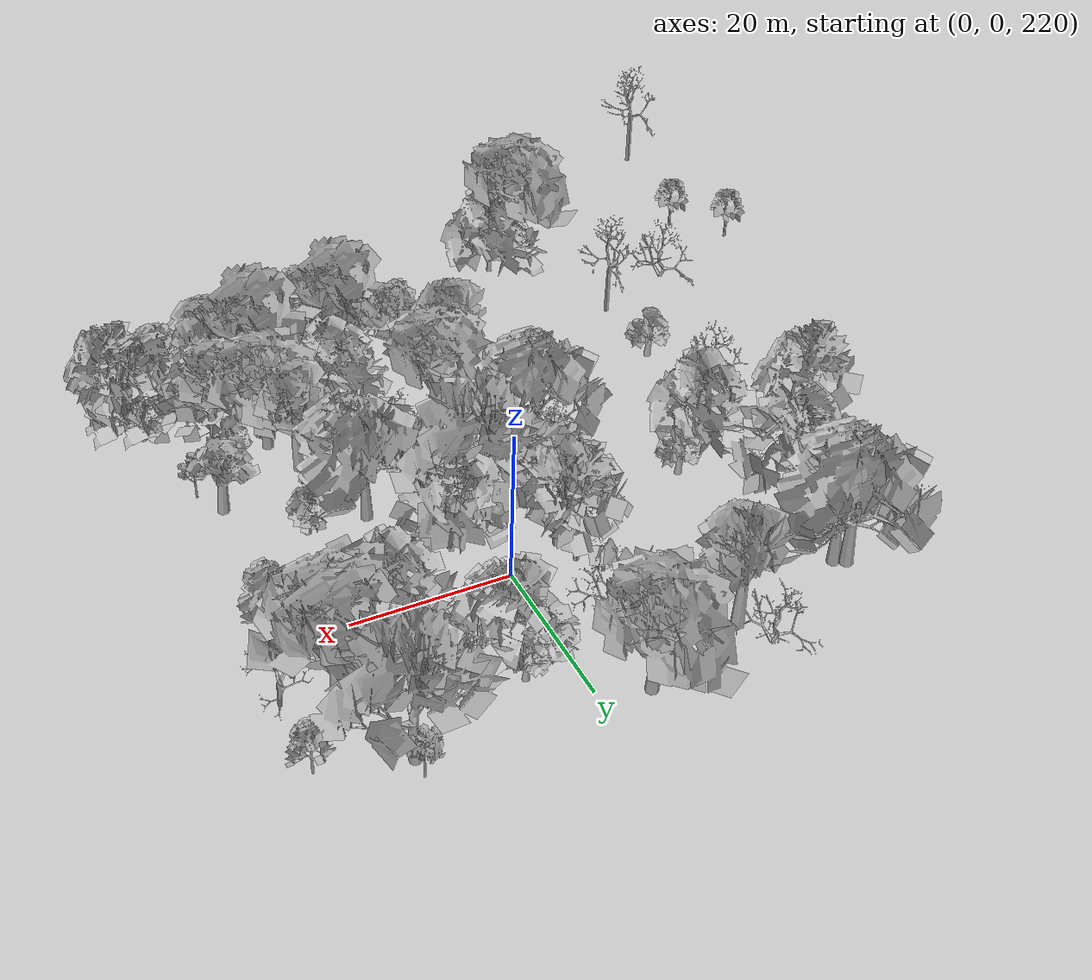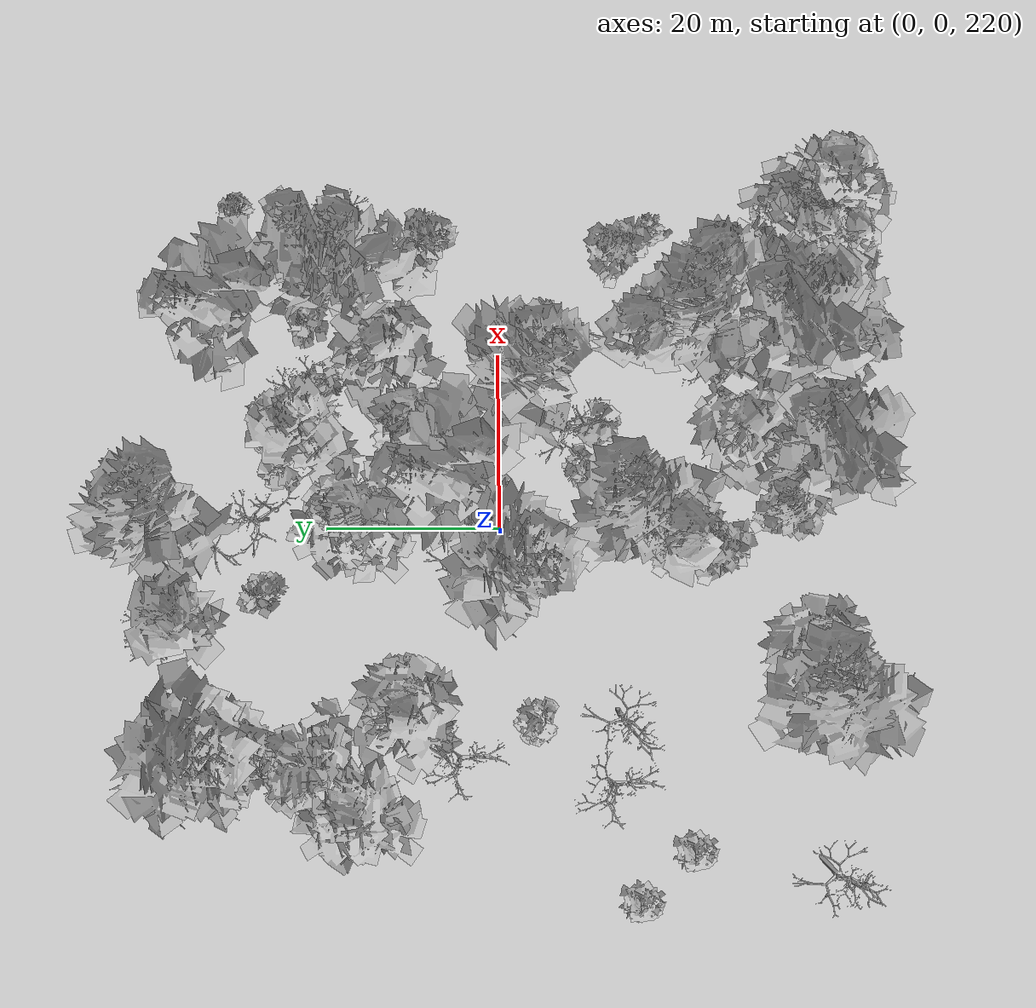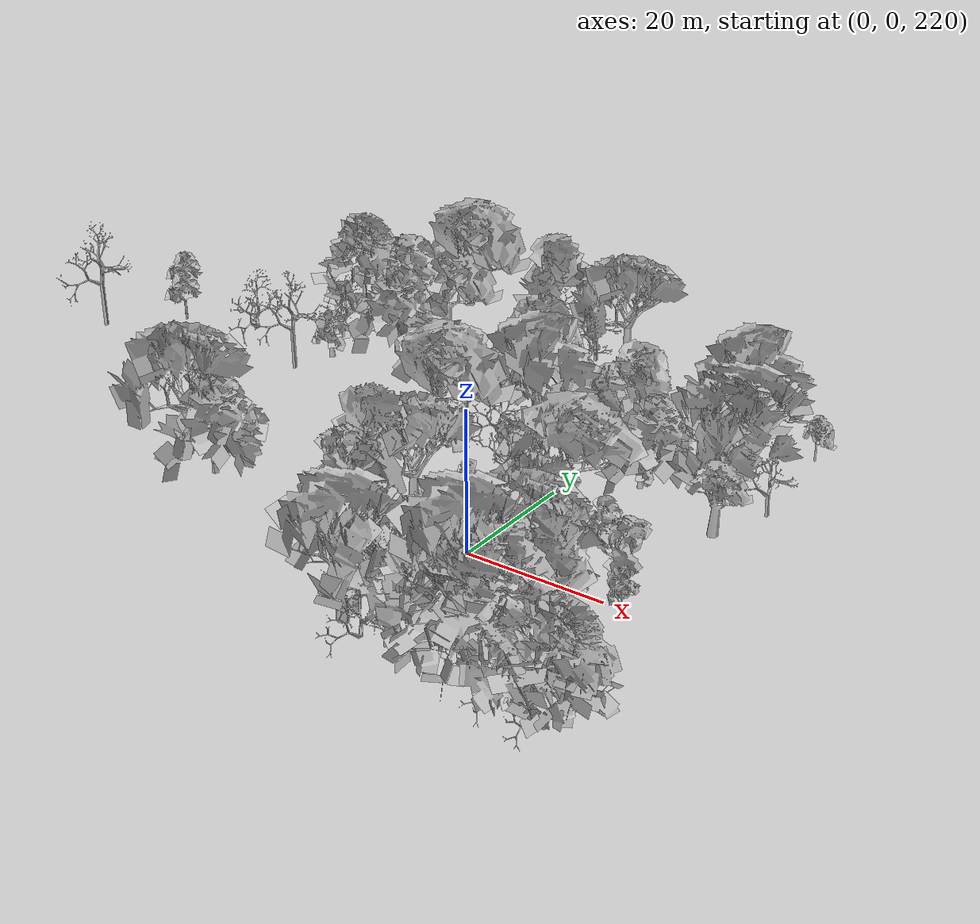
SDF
<sdf version="1.6">
 <world name="default">
  <light name="sun" type="directional">
   <pose>0 0 10 0 -0 0</pose>
   <diffuse>0.8 0.8 0.8 1</diffuse>
   <specular>0.2 0.2 0.2 1</specular>
   <attenuation>
    <range>1000</range>
    <constant>0.9</constant>
    <linear>0.01</linear>
    <quadratic>0.001</quadratic>
   </attenuation>
   <direction>-0.5 0.1 -0.9</direction>
  </light>
  <scene>
   <sky><clouds><speed>12</speed></clouds></sky>
   <ambient>0.4 0.4 0.4 1</ambient>
   <background>0.7 0.7 0.7 1</background>
   <shadows>1</shadows>
  </scene>
  <spherical_coordinates>
   <surface_model>EARTH_WGS84</surface_model>
   <latitude_deg>47.3977</latitude_deg>
   <longitude_deg>8.54559</longitude_deg>
   <elevation>0</elevation>
   <heading_deg>0</heading_deg>
  </spherical_coordinates>
  <physics name="default_physics" default="0" type="ode">
   <ode>
    <solver>
     <type>quick</type>
     <iters>100</iters>
     <sor>1.3</sor>
     <use_dynamic_moi_rescaling>0</use_dynamic_moi_rescaling>
    </solver>
    <constraints>
     <cfm>0</cfm>
     <erp>0.2</erp>
     <contact_max_correcting_vel>100</contact_max_correcting_vel>
     <contact_surface_layer>0.001</contact_surface_layer>
    </constraints>
   </ode>
   <max_step_size>0.002</max_step_size>
   <real_time_factor>1</real_time_factor>
   <real_time_update_rate>500</real_time_update_rate>
  </physics>
  <gravity>0 0 -9.8</gravity>
  <magnetic_field>6e-06 2.3e-05 -4.2e-05</magnetic_field>
  <atmosphere type="adiabatic"/>
  <model name="my_mesh0">
   <pose>31.1524 -31.311 230.497 0 0 -1.45035</pose>
   <static>1</static>
   <link name="body">
    <visual name="visual">
     <geometry><mesh><uri>model://trees/12.dae</uri><scale>1 1 1</scale></mesh></geometry>
    </visual>
    <collision name="collision">
     <geometry><mesh><uri>model://trees/12.dae</uri><scale>1 1 1</scale></mesh></geometry>
    </collision>
   </link>
  </model>
  <model name="my_mesh1">
   <pose>29.3888 -31.8698 229.95 0 -0 0.106092</pose>
   <static>1</static>
   <link name="body">
    <visual name="visual">
     <geometry><mesh><uri>model://trees/4.dae</uri><scale>1 1 1</scale></mesh></geometry>
    </visual>
    <collision name="collision">
     <geometry><mesh><uri>model://trees/4.dae</uri><scale>1 1 1</scale></mesh></geometry>
    </collision>
   </link>
  </model>
  <model name="my_mesh2">
   <pose>15.3385 -22.8535 231.509 0 0 -1.45062</pose>
   <static>1</static>
   <link name="body">
    <visual name="visual">
     <geometry><mesh><uri>model://trees/17.dae</uri><scale>1 1 1</scale></mesh></geometry>
    </visual>
    <collision name="collision">
     <geometry><mesh><uri>model://trees/17.dae</uri><scale>1 1 1</scale></mesh></geometry>
    </collision>
   </link>
  </model>
  <model name="my_mesh3">
   <pose>24.655 -35.0737 231.24 0 -0 1.0897</pose>
   <static>1</static>
   <link name="body">
    <visual name="visual">
     <geometry><mesh><uri>model://trees/4.dae</uri><scale>1 1 1</scale></mesh></geometry>
    </visual>
    <collision name="collision">
     <geometry><mesh><uri>model://trees/4.dae</uri><scale>1 1 1</scale></mesh></geometry>
    </collision>
   </link>
  </model>
  <model name="my_mesh4">
   <pose>20.6946 -32.0705 231.665 0 -0 0.135253</pose>
   <static>1</static>
   <link name="body">
    <visual name="visual">
     <geometry><mesh><uri>model://trees/12.dae</uri><scale>1 1 1</scale></mesh></geometry>
    </visual>
    <collision name="collision">
     <geometry><mesh><uri>model://trees/12.dae</uri><scale>1 1 1</scale></mesh></geometry>
    </collision>
   </link>
  </model>
  <model name="my_mesh5">
   <pose>-13.8171 -29.8009 242.963 0 -0 0.102727</pose>
   <static>1</static>
   <link name="body">
    <visual name="visual">
     <geometry><mesh><uri>model://trees/0.dae</uri><scale>1 1 1</scale></mesh></geometry>
    </visual>
    <collision name="collision">
     <geometry><mesh><uri>model://trees/0.dae</uri><scale>1 1 1</scale></mesh></geometry>
    </collision>
   </link>
  </model>
  <model name="my_mesh6">
   <pose>31.3843 -30.0536 230.694 0 -0 0.717712</pose>
   <static>1</static>
   <link name="body">
    <visual name="visual">
     <geometry><mesh><uri>model://trees/18.dae</uri><scale>1 1 1</scale></mesh></geometry>
    </visual>
    <collision name="collision">
     <geometry><mesh><uri>model://trees/18.dae</uri><scale>1 1 1</scale></mesh></geometry>
    </collision>
   </link>
  </model>
  <model name="my_mesh7">
   <pose>30.1693 -34.8302 229.556 0 0 -0.960218</pose>
   <static>1</static>
   <link name="body">
    <visual name="visual">
     <geometry><mesh><uri>model://trees/12.dae</uri><scale>1 1 1</scale></mesh></geometry>
    </visual>
    <collision name="collision">
     <geometry><mesh><uri>model://trees/12.dae</uri><scale>1 1 1</scale></mesh></geometry>
    </collision>
   </link>
  </model>
  <model name="my_mesh8">
   <pose>11.8877 -35.4621 230.894 0 0 -0.17105</pose>
   <static>1</static>
   <link name="body">
    <visual name="visual">
     <geometry><mesh><uri>model://trees/19.dae</uri><scale>1 1 1</scale></mesh></geometry>
    </visual>
    <collision name="collision">
     <geometry><mesh><uri>model://trees/19.dae</uri><scale>1 1 1</scale></mesh></geometry>
    </collision>
   </link>
  </model>
  <model name="my_mesh9">
   <pose>15.0563 -35.501 230.777 0 0 -0.872889</pose>
   <static>1</static>
   <link name="body">
    <visual name="visual">
     <geometry><mesh><uri>model://trees/3.dae</uri><scale>1 1 1</scale></mesh></geometry>
    </visual>
    <collision name="collision">
     <geometry><mesh><uri>model://trees/3.dae</uri><scale>1 1 1</scale></mesh></geometry>
    </collision>
   </link>
  </model>
  <model name="my_mesh10">
   <pose>20.3571 -29.6023 232.07 0 -0 0.651751</pose>
   <static>1</static>
   <link name="body">
    <visual name="visual">
     <geometry><mesh><uri>model://trees/10.dae</uri><scale>1 1 1</scale></mesh></geometry>
    </visual>
    <collision name="collision">
     <geometry><mesh><uri>model://trees/10.dae</uri><scale>1 1 1</scale></mesh></geometry>
    </collision>
   </link>
  </model>
  <model name="my_mesh11">
   <pose>34.1397 -33.8044 229.607 0 0 -1.47912</pose>
   <static>1</static>
   <link name="body">
    <visual name="visual">
     <geometry><mesh><uri>model://trees/12.dae</uri><scale>1 1 1</scale></mesh></geometry>
    </visual>
    <collision name="collision">
     <geometry><mesh><uri>model://trees/12.dae</uri><scale>1 1 1</scale></mesh></geometry>
    </collision>
   </link>
  </model>
  <model name="my_mesh12">
   <pose>35.7313 -34.6713 229.02 0 0 -0.261683</pose>
   <static>1</static>
   <link name="body">
    <visual name="visual">
     <geometry><mesh><uri>model://trees/15.dae</uri><scale>1 1 1</scale></mesh></geometry>
    </visual>
    <collision name="collision">
     <geometry><mesh><uri>model://trees/15.dae</uri><scale>1 1 1</scale></mesh></geometry>
    </collision>
   </link>
  </model>
  <model name="my_mesh13">
   <pose>29.662 -12.3445 230.518 0 -0 1.25036</pose>
   <static>1</static>
   <link name="body">
    <visual name="visual">
     <geometry><mesh><uri>model://trees/7.dae</uri><scale>1 1 1</scale></mesh></geometry>
    </visual>
    <collision name="collision">
     <geometry><mesh><uri>model://trees/7.dae</uri><scale>1 1 1</scale></mesh></geometry>
    </collision>
   </link>
  </model>
  <model name="my_mesh14">
   <pose>8.32629 -34.2031 230.635 0 0 -1.23552</pose>
   <static>1</static>
   <link name="body">
    <visual name="visual">
     <geometry><mesh><uri>model://trees/2.dae</uri><scale>1 1 1</scale></mesh></geometry>
    </visual>
    <collision name="collision">
     <geometry><mesh><uri>model://trees/2.dae</uri><scale>1 1 1</scale></mesh></geometry>
    </collision>
   </link>
  </model>
  <model name="my_mesh15">
   <pose>25.5189 -28.6891 230.988 0 0 -1.3408</pose>
   <static>1</static>
   <link name="body">
    <visual name="visual">
     <geometry><mesh><uri>model://trees/11.dae</uri><scale>1 1 1</scale></mesh></geometry>
    </visual>
    <collision name="collision">
     <geometry><mesh><uri>model://trees/11.dae</uri><scale>1 1 1</scale></mesh></geometry>
    </collision>
   </link>
  </model>
  <model name="my_mesh16">
   <pose>34.3119 -29.0773 230.346 0 0 -0.647521</pose>
   <static>1</static>
   <link name="body">
    <visual name="visual">
     <geometry><mesh><uri>model://trees/0.dae</uri><scale>1 1 1</scale></mesh></geometry>
    </visual>
    <collision name="collision">
     <geometry><mesh><uri>model://trees/0.dae</uri><scale>1 1 1</scale></mesh></geometry>
    </collision>
   </link>
  </model>
  <model name="my_mesh17">
   <pose>34.753 -31.8619 230.264 0 -0 1.55208</pose>
   <static>1</static>
   <link name="body">
    <visual name="visual">
     <geometry><mesh><uri>model://trees/3.dae</uri><scale>1 1 1</scale></mesh></geometry>
    </visual>
    <collision name="collision">
     <geometry><mesh><uri>model://trees/3.dae</uri><scale>1 1 1</scale></mesh></geometry>
    </collision>
   </link>
  </model>
  <model name="my_mesh18">
   <pose>25.0224 -32.5216 230.934 0 -0 1.19606</pose>
   <static>1</static>
   <link name="body">
    <visual name="visual">
     <geometry><mesh><uri>model://trees/11.dae</uri><scale>1 1 1</scale></mesh></geometry>
    </visual>
    <collision name="collision">
     <geometry><mesh><uri>model://trees/11.dae</uri><scale>1 1 1</scale></mesh></geometry>
    </collision>
   </link>
  </model>
  <model name="my_mesh19">
   <pose>7.82168 -31.7989 230.685 0 0 -0.762292</pose>
   <static>1</static>
   <link name="body">
    <visual name="visual">
     <geometry><mesh><uri>model://trees/8.dae</uri><scale>1 1 1</scale></mesh></geometry>
    </visual>
    <collision name="collision">
     <geometry><mesh><uri>model://trees/8.dae</uri><scale>1 1 1</scale></mesh></geometry>
    </collision>
   </link>
  </model>
  <model name="my_mesh20">
   <pose>21.6446 -22.6913 231.066 0 -0 0.324053</pose>
   <static>1</static>
   <link name="body">
    <visual name="visual">
     <geometry><mesh><uri>model://trees/16.dae</uri><scale>1 1 1</scale></mesh></geometry>
    </visual>
    <collision name="collision">
     <geometry><mesh><uri>model://trees/16.dae</uri><scale>1 1 1</scale></mesh></geometry>
    </collision>
   </link>
  </model>
  <model name="my_mesh21">
   <pose>11.071 -26.0863 231.149 0 -0 1.03473</pose>
   <static>1</static>
   <link name="body">
    <visual name="visual">
     <geometry><mesh><uri>model://trees/12.dae</uri><scale>1 1 1</scale></mesh></geometry>
    </visual>
    <collision name="collision">
     <geometry><mesh><uri>model://trees/12.dae</uri><scale>1 1 1</scale></mesh></geometry>
    </collision>
   </link>
  </model>
  <model name="my_mesh22">
   <pose>31.7509 -32.9906 230.148 0 0 -0.412476</pose>
   <static>1</static>
   <link name="body">
    <visual name="visual">
     <geometry><mesh><uri>model://trees/16.dae</uri><scale>1 1 1</scale></mesh></geometry>
    </visual>
    <collision name="collision">
     <geometry><mesh><uri>model://trees/16.dae</uri><scale>1 1 1</scale></mesh></geometry>
    </collision>
   </link>
  </model>
  <model name="my_mesh23">
   <pose>35.0457 -35.7814 229.169 0 0 -0.416861</pose>
   <static>1</static>
   <link name="body">
    <visual name="visual">
     <geometry><mesh><uri>model://trees/18.dae</uri><scale>1 1 1</scale></mesh></geometry>
    </visual>
    <collision name="collision">
     <geometry><mesh><uri>model://trees/18.dae</uri><scale>1 1 1</scale></mesh></geometry>
    </collision>
   </link>
  </model>
  <model name="my_mesh24">
   <pose>22.8717 -26.872 231.231 0 -0 0.503074</pose>
   <static>1</static>
   <link name="body">
    <visual name="visual">
     <geometry><mesh><uri>model://trees/18.dae</uri><scale>1 1 1</scale></mesh></geometry>
    </visual>
    <collision name="collision">
     <geometry><mesh><uri>model://trees/18.dae</uri><scale>1 1 1</scale></mesh></geometry>
    </collision>
   </link>
  </model>
  <model name="my_mesh25">
   <pose>16.8344 -33.4902 231.24 0 -0 1.45373</pose>
   <static>1</static>
   <link name="body">
    <visual name="visual">
     <geometry><mesh><uri>model://trees/5.dae</uri><scale>1 1 1</scale></mesh></geometry>
    </visual>
    <collision name="collision">
     <geometry><mesh><uri>model://trees/5.dae</uri><scale>1 1 1</scale></mesh></geometry>
    </collision>
   </link>
  </model>
  <model name="my_mesh26">
   <pose>25.4615 -33.8037 231.056 0 0 -0.284235</pose>
   <static>1</static>
   <link name="body">
    <visual name="visual">
     <geometry><mesh><uri>model://trees/2.dae</uri><scale>1 1 1</scale></mesh></geometry>
    </visual>
    <collision name="collision">
     <geometry><mesh><uri>model://trees/2.dae</uri><scale>1 1 1</scale></mesh></geometry>
    </collision>
   </link>
  </model>
  <model name="my_mesh27">
   <pose>33.8104 -33.6316 229.918 0 -0 0.342298</pose>
   <static>1</static>
   <link name="body">
    <visual name="visual">
     <geometry><mesh><uri>model://trees/13.dae</uri><scale>1 1 1</scale></mesh></geometry>
    </visual>
    <collision name="collision">
     <geometry><mesh><uri>model://trees/13.dae</uri><scale>1 1 1</scale></mesh></geometry>
    </collision>
   </link>
  </model>
  <model name="my_mesh28">
   <pose>8.11139 -33.9276 230.679 0 -0 0.625491</pose>
   <static>1</static>
   <link name="body">
    <visual name="visual">
     <geometry><mesh><uri>model://trees/10.dae</uri><scale>1 1 1</scale></mesh></geometry>
    </visual>
    <collision name="collision">
     <geometry><mesh><uri>model://trees/10.dae</uri><scale>1 1 1</scale></mesh></geometry>
    </collision>
   </link>
  </model>
  <model name="my_mesh29">
   <pose>19.4259 -35.2116 231.509 0 -0 0.205237</pose>
   <static>1</static>
   <link name="body">
    <visual name="visual">
     <geometry><mesh><uri>model://trees/13.dae</uri><scale>1 1 1</scale></mesh></geometry>
    </visual>
    <collision name="collision">
     <geometry><mesh><uri>model://trees/13.dae</uri><scale>1 1 1</scale></mesh></geometry>
    </collision>
   </link>
  </model>
  <model name="my_mesh30">
   <pose>18.3582 -32.2394 231.561 0 -0 0.185167</pose>
   <static>1</static>
   <link name="body">
    <visual name="visual">
     <geometry><mesh><uri>model://trees/7.dae</uri><scale>1 1 1</scale></mesh></geometry>
    </visual>
    <collision name="collision">
     <geometry><mesh><uri>model://trees/7.dae</uri><scale>1 1 1</scale></mesh></geometry>
    </collision>
   </link>
  </model>
  <model name="my_mesh31">
   <pose>13.8049 -32.8782 231.037 0 -0 0.808948</pose>
   <static>1</static>
   <link name="body">
    <visual name="visual">
     <geometry><mesh><uri>model://trees/13.dae</uri><scale>1 1 1</scale></mesh></geometry>
    </visual>
    <collision name="collision">
     <geometry><mesh><uri>model://trees/13.dae</uri><scale>1 1 1</scale></mesh></geometry>
    </collision>
   </link>
  </model>
  <model name="my_mesh32">
   <pose>2.14139 -29.3968 234.385 0 -0 0.318482</pose>
   <static>1</static>
   <link name="body">
    <visual name="visual">
     <geometry><mesh><uri>model://trees/7.dae</uri><scale>1 1 1</scale></mesh></geometry>
    </visual>
    <collision name="collision">
     <geometry><mesh><uri>model://trees/7.dae</uri><scale>1 1 1</scale></mesh></geometry>
    </collision>
   </link>
  </model>
  <model name="my_mesh33">
   <pose>1.45094 24.8651 231.984 0 -0 0.811719</pose>
   <static>1</static>
   <link name="body">
    <visual name="visual">
     <geometry><mesh><uri>model://trees/16.dae</uri><scale>1 1 1</scale></mesh></geometry>
    </visual>
    <collision name="collision">
     <geometry><mesh><uri>model://trees/16.dae</uri><scale>1 1 1</scale></mesh></geometry>
    </collision>
   </link>
  </model>
  <model name="my_mesh34">
   <pose>22.5375 -4.4797 230.974 0 0 -1.01621</pose>
   <static>1</static>
   <link name="body">
    <visual name="visual">
     <geometry><mesh><uri>model://trees/0.dae</uri><scale>1 1 1</scale></mesh></geometry>
    </visual>
    <collision name="collision">
     <geometry><mesh><uri>model://trees/0.dae</uri><scale>1 1 1</scale></mesh></geometry>
    </collision>
   </link>
  </model>
  <model name="my_mesh35">
   <pose>-1.21129 -21.8494 236.618 0 -0 1.04905</pose>
   <static>1</static>
   <link name="body">
    <visual name="visual">
     <geometry><mesh><uri>model://trees/7.dae</uri><scale>1 1 1</scale></mesh></geometry>
    </visual>
    <collision name="collision">
     <geometry><mesh><uri>model://trees/7.dae</uri><scale>1 1 1</scale></mesh></geometry>
    </collision>
   </link>
  </model>
  <model name="my_mesh36">
   <pose>15.5492 20.7111 230.208 0 0 -0.635082</pose>
   <static>1</static>
   <link name="body">
    <visual name="visual">
     <geometry><mesh><uri>model://trees/18.dae</uri><scale>1 1 1</scale></mesh></geometry>
    </visual>
    <collision name="collision">
     <geometry><mesh><uri>model://trees/18.dae</uri><scale>1 1 1</scale></mesh></geometry>
    </collision>
   </link>
  </model>
  <model name="my_mesh37">
   <pose>23.8178 28.2306 229.45 0 -0 1.53763</pose>
   <static>1</static>
   <link name="body">
    <visual name="visual">
     <geometry><mesh><uri>model://trees/10.dae</uri><scale>1 1 1</scale></mesh></geometry>
    </visual>
    <collision name="collision">
     <geometry><mesh><uri>model://trees/10.dae</uri><scale>1 1 1</scale></mesh></geometry>
    </collision>
   </link>
  </model>
  <model name="my_mesh38">
   <pose>11.5917 20.6222 231.431 0 0 -0.04736</pose>
   <static>1</static>
   <link name="body">
    <visual name="visual">
     <geometry><mesh><uri>model://trees/4.dae</uri><scale>1 1 1</scale></mesh></geometry>
    </visual>
    <collision name="collision">
     <geometry><mesh><uri>model://trees/4.dae</uri><scale>1 1 1</scale></mesh></geometry>
    </collision>
   </link>
  </model>
  <model name="my_mesh39">
   <pose>-0.13213 30.0152 235.826 0 0 -0.648301</pose>
   <static>1</static>
   <link name="body">
    <visual name="visual">
     <geometry><mesh><uri>model://trees/17.dae</uri><scale>1 1 1</scale></mesh></geometry>
    </visual>
    <collision name="collision">
     <geometry><mesh><uri>model://trees/17.dae</uri><scale>1 1 1</scale></mesh></geometry>
    </collision>
   </link>
  </model>
  <model name="my_mesh40">
   <pose>26.3459 -18.9374 231.747 0 -0 1.35426</pose>
   <static>1</static>
   <link name="body">
    <visual name="visual">
     <geometry><mesh><uri>model://trees/0.dae</uri><scale>1 1 1</scale></mesh></geometry>
    </visual>
    <collision name="collision">
     <geometry><mesh><uri>model://trees/0.dae</uri><scale>1 1 1</scale></mesh></geometry>
    </collision>
   </link>
  </model>
  <model name="my_mesh41">
   <pose>26.5411 15.8974 228.092 0 -0 0.029757</pose>
   <static>1</static>
   <link name="body">
    <visual name="visual">
     <geometry><mesh><uri>model://trees/10.dae</uri><scale>1 1 1</scale></mesh></geometry>
    </visual>
    <collision name="collision">
     <geometry><mesh><uri>model://trees/10.dae</uri><scale>1 1 1</scale></mesh></geometry>
    </collision>
   </link>
  </model>
  <model name="my_mesh42">
   <pose>30.1245 7.34383 229.103 0 0 -1.22853</pose>
   <static>1</static>
   <link name="body">
    <visual name="visual">
     <geometry><mesh><uri>model://trees/7.dae</uri><scale>1 1 1</scale></mesh></geometry>
    </visual>
    <collision name="collision">
     <geometry><mesh><uri>model://trees/7.dae</uri><scale>1 1 1</scale></mesh></geometry>
    </collision>
   </link>
  </model>
  <model name="my_mesh43">
   <pose>6.92032 23.0483 230.588 0 0 -0.795025</pose>
   <static>1</static>
   <link name="body">
    <visual name="visual">
     <geometry><mesh><uri>model://trees/5.dae</uri><scale>1 1 1</scale></mesh></geometry>
    </visual>
    <collision name="collision">
     <geometry><mesh><uri>model://trees/5.dae</uri><scale>1 1 1</scale></mesh></geometry>
    </collision>
   </link>
  </model>
  <model name="my_mesh44">
   <pose>21.6905 -20.5474 231.33 0 -0 0.204067</pose>
   <static>1</static>
   <link name="body">
    <visual name="visual">
     <geometry><mesh><uri>model://trees/9.dae</uri><scale>1 1 1</scale></mesh></geometry>
    </visual>
    <collision name="collision">
     <geometry><mesh><uri>model://trees/9.dae</uri><scale>1 1 1</scale></mesh></geometry>
    </collision>
   </link>
  </model>
  <model name="my_mesh45">
   <pose>-3.1877 -1.05893 235.667 0 0 -1.4459</pose>
   <static>1</static>
   <link name="body">
    <visual name="visual">
     <geometry><mesh><uri>model://trees/9.dae</uri><scale>1 1 1</scale></mesh></geometry>
    </visual>
    <collision name="collision">
     <geometry><mesh><uri>model://trees/9.dae</uri><scale>1 1 1</scale></mesh></geometry>
    </collision>
   </link>
  </model>
  <model name="my_mesh46">
   <pose>19.883 -14.7815 231.582 0 -0 0.22335</pose>
   <static>1</static>
   <link name="body">
    <visual name="visual">
     <geometry><mesh><uri>model://trees/11.dae</uri><scale>1 1 1</scale></mesh></geometry>
    </visual>
    <collision name="collision">
     <geometry><mesh><uri>model://trees/11.dae</uri><scale>1 1 1</scale></mesh></geometry>
    </collision>
   </link>
  </model>
  <model name="my_mesh47">
   <pose>10.537 24.3267 230.641 0 -0 0.197839</pose>
   <static>1</static>
   <link name="body">
    <visual name="visual">
     <geometry><mesh><uri>model://trees/0.dae</uri><scale>1 1 1</scale></mesh></geometry>
    </visual>
    <collision name="collision">
     <geometry><mesh><uri>model://trees/0.dae</uri><scale>1 1 1</scale></mesh></geometry>
    </collision>
   </link>
  </model>
  <model name="my_mesh48">
   <pose>6.74933 0.761423 234.636 0 0 -1.11255</pose>
   <static>1</static>
   <link name="body">
    <visual name="visual">
     <geometry><mesh><uri>model://trees/5.dae</uri><scale>1 1 1</scale></mesh></geometry>
    </visual>
    <collision name="collision">
     <geometry><mesh><uri>model://trees/5.dae</uri><scale>1 1 1</scale></mesh></geometry>
    </collision>
   </link>
  </model>
  <model name="my_mesh49">
   <pose>-2.69573 3.8266 234.033 0 0 -0.558075</pose>
   <static>1</static>
   <link name="body">
    <visual name="visual">
     <geometry><mesh><uri>model://trees/16.dae</uri><scale>1 1 1</scale></mesh></geometry>
    </visual>
    <collision name="collision">
     <geometry><mesh><uri>model://trees/16.dae</uri><scale>1 1 1</scale></mesh></geometry>
    </collision>
   </link>
  </model>
  <model name="my_mesh50">
   <pose>16.1899 18.6502 229.69 0 -0 1.36376</pose>
   <static>1</static>
   <link name="body">
    <visual name="visual">
     <geometry><mesh><uri>model://trees/4.dae</uri><scale>1 1 1</scale></mesh></geometry>
    </visual>
    <collision name="collision">
     <geometry><mesh><uri>model://trees/4.dae</uri><scale>1 1 1</scale></mesh></geometry>
    </collision>
   </link>
  </model>
  <model name="my_mesh51">
   <pose>-26.804 14.2107 241.076 0 0 -0.250667</pose>
   <static>1</static>
   <link name="body">
    <visual name="visual">
     <geometry><mesh><uri>model://trees/15.dae</uri><scale>1 1 1</scale></mesh></geometry>
    </visual>
    <collision name="collision">
     <geometry><mesh><uri>model://trees/15.dae</uri><scale>1 1 1</scale></mesh></geometry>
    </collision>
   </link>
  </model>
  <model name="my_mesh52">
   <pose>-7.85165 31.9068 237.208 0 0 -0.996379</pose>
   <static>1</static>
   <link name="body">
    <visual name="visual">
     <geometry><mesh><uri>model://trees/11.dae</uri><scale>1 1 1</scale></mesh></geometry>
    </visual>
    <collision name="collision">
     <geometry><mesh><uri>model://trees/11.dae</uri><scale>1 1 1</scale></mesh></geometry>
    </collision>
   </link>
  </model>
  <model name="my_mesh53">
   <pose>0.437031 15.3349 235.084 0 0 -0.380502</pose>
   <static>1</static>
   <link name="body">
    <visual name="visual">
     <geometry><mesh><uri>model://trees/15.dae</uri><scale>1 1 1</scale></mesh></geometry>
    </visual>
    <collision name="collision">
     <geometry><mesh><uri>model://trees/15.dae</uri><scale>1 1 1</scale></mesh></geometry>
    </collision>
   </link>
  </model>
  <model name="my_mesh54">
   <pose>21.9184 -23.1997 231.017 0 -0 1.49596</pose>
   <static>1</static>
   <link name="body">
    <visual name="visual">
     <geometry><mesh><uri>model://trees/13.dae</uri><scale>1 1 1</scale></mesh></geometry>
    </visual>
    <collision name="collision">
     <geometry><mesh><uri>model://trees/13.dae</uri><scale>1 1 1</scale></mesh></geometry>
    </collision>
   </link>
  </model>
  <model name="my_mesh55">
   <pose>18.5333 10.3523 230.592 0 -0 0.225272</pose>
   <static>1</static>
   <link name="body">
    <visual name="visual">
     <geometry><mesh><uri>model://trees/1.dae</uri><scale>1 1 1</scale></mesh></geometry>
    </visual>
    <collision name="collision">
     <geometry><mesh><uri>model://trees/1.dae</uri><scale>1 1 1</scale></mesh></geometry>
    </collision>
   </link>
  </model>
  <model name="my_mesh56">
   <pose>33.4995 27.4587 231.53 0 0 -1.53165</pose>
   <static>1</static>
   <link name="body">
    <visual name="visual">
     <geometry><mesh><uri>model://trees/6.dae</uri><scale>1 1 1</scale></mesh></geometry>
    </visual>
    <collision name="collision">
     <geometry><mesh><uri>model://trees/6.dae</uri><scale>1 1 1</scale></mesh></geometry>
    </collision>
   </link>
  </model>
  <model name="my_mesh57">
   <pose>23.8561 30.4774 229.586 0 0 -0.249665</pose>
   <static>1</static>
   <link name="body">
    <visual name="visual">
     <geometry><mesh><uri>model://trees/3.dae</uri><scale>1 1 1</scale></mesh></geometry>
    </visual>
    <collision name="collision">
     <geometry><mesh><uri>model://trees/3.dae</uri><scale>1 1 1</scale></mesh></geometry>
    </collision>
   </link>
  </model>
  <model name="my_mesh58">
   <pose>27.137 -22.6473 231.411 0 -0 0.579199</pose>
   <static>1</static>
   <link name="body">
    <visual name="visual">
     <geometry><mesh><uri>model://trees/11.dae</uri><scale>1 1 1</scale></mesh></geometry>
    </visual>
    <collision name="collision">
     <geometry><mesh><uri>model://trees/11.dae</uri><scale>1 1 1</scale></mesh></geometry>
    </collision>
   </link>
  </model>
  <model name="my_mesh59">
   <pose>2.37245 33.8248 234.746 0 -0 0.175084</pose>
   <static>1</static>
   <link name="body">
    <visual name="visual">
     <geometry><mesh><uri>model://trees/9.dae</uri><scale>1 1 1</scale></mesh></geometry>
    </visual>
    <collision name="collision">
     <geometry><mesh><uri>model://trees/9.dae</uri><scale>1 1 1</scale></mesh></geometry>
    </collision>
   </link>
  </model>
  <model name="my_mesh60">
   <pose>-22.8713 18.0327 237.783 0 -0 1.30502</pose>
   <static>1</static>
   <link name="body">
    <visual name="visual">
     <geometry><mesh><uri>model://trees/15.dae</uri><scale>1 1 1</scale></mesh></geometry>
    </visual>
    <collision name="collision">
     <geometry><mesh><uri>model://trees/15.dae</uri><scale>1 1 1</scale></mesh></geometry>
    </collision>
   </link>
  </model>
  <model name="my_mesh61">
   <pose>20.2358 -7.73237 231.77 0 -0 1.06163</pose>
   <static>1</static>
   <link name="body">
    <visual name="visual">
     <geometry><mesh><uri>model://trees/6.dae</uri><scale>1 1 1</scale></mesh></geometry>
    </visual>
    <collision name="collision">
     <geometry><mesh><uri>model://trees/6.dae</uri><scale>1 1 1</scale></mesh></geometry>
    </collision>
   </link>
  </model>
  <model name="my_mesh62">
   <pose>32.8948 15.9846 228.647 0 0 -0.741129</pose>
   <static>1</static>
   <link name="body">
    <visual name="visual">
     <geometry><mesh><uri>model://trees/17.dae</uri><scale>1 1 1</scale></mesh></geometry>
    </visual>
    <collision name="collision">
     <geometry><mesh><uri>model://trees/17.dae</uri><scale>1 1 1</scale></mesh></geometry>
    </collision>
   </link>
  </model>
  <model name="my_mesh63">
   <pose>1.92119 13.5641 236.289 0 -0 0.58847</pose>
   <static>1</static>
   <link name="body">
    <visual name="visual">
     <geometry><mesh><uri>model://trees/14.dae</uri><scale>1 1 1</scale></mesh></geometry>
    </visual>
    <collision name="collision">
     <geometry><mesh><uri>model://trees/14.dae</uri><scale>1 1 1</scale></mesh></geometry>
    </collision>
   </link>
  </model>
  <model name="my_mesh64">
   <pose>-17.5783 9.04155 240.015 0 -0 0.206346</pose>
   <static>1</static>
   <link name="body">
    <visual name="visual">
     <geometry><mesh><uri>model://trees/12.dae</uri><scale>1 1 1</scale></mesh></geometry>
    </visual>
    <collision name="collision">
     <geometry><mesh><uri>model://trees/12.dae</uri><scale>1 1 1</scale></mesh></geometry>
    </collision>
   </link>
  </model>
  <model name="my_mesh65">
   <pose>10.5349 -6.71665 232.479 0 -0 0.458585</pose>
   <static>1</static>
   <link name="body">
    <visual name="visual">
     <geometry><mesh><uri>model://trees/16.dae</uri><scale>1 1 1</scale></mesh></geometry>
    </visual>
    <collision name="collision">
     <geometry><mesh><uri>model://trees/16.dae</uri><scale>1 1 1</scale></mesh></geometry>
    </collision>
   </link>
  </model>
  <model name="my_mesh66">
   <pose>3.21594 -14.8613 233.074 0 -0 0.603148</pose>
   <static>1</static>
   <link name="body">
    <visual name="visual">
     <geometry><mesh><uri>model://trees/9.dae</uri><scale>1 1 1</scale></mesh></geometry>
    </visual>
    <collision name="collision">
     <geometry><mesh><uri>model://trees/9.dae</uri><scale>1 1 1</scale></mesh></geometry>
    </collision>
   </link>
  </model>
  <model name="my_mesh67">
   <pose>-0.94159 -18.419 235.905 0 -0 0.746533</pose>
   <static>1</static>
   <link name="body">
    <visual name="visual">
     <geometry><mesh><uri>model://trees/7.dae</uri><scale>1 1 1</scale></mesh></geometry>
    </visual>
    <collision name="collision">
     <geometry><mesh><uri>model://trees/7.dae</uri><scale>1 1 1</scale></mesh></geometry>
    </collision>
   </link>
  </model>
  <model name="my_mesh68">
   <pose>10.8279 20.3016 232.021 0 0 -0.875052</pose>
   <static>1</static>
   <link name="body">
    <visual name="visual">
     <geometry><mesh><uri>model://trees/13.dae</uri><scale>1 1 1</scale></mesh></geometry>
    </visual>
    <collision name="collision">
     <geometry><mesh><uri>model://trees/13.dae</uri><scale>1 1 1</scale></mesh></geometry>
    </collision>
   </link>
  </model>
  <model name="my_mesh69">
   <pose>29.7882 -35.173 229.816 0 0 -0.085258</pose>
   <static>1</static>
   <link name="body">
    <visual name="visual">
     <geometry><mesh><uri>model://trees/19.dae</uri><scale>1 1 1</scale></mesh></geometry>
    </visual>
    <collision name="collision">
     <geometry><mesh><uri>model://trees/19.dae</uri><scale>1 1 1</scale></mesh></geometry>
    </collision>
   </link>
  </model>
  <model name="my_mesh70">
   <pose>22.2897 20.449 229.522 0 0 -0.693477</pose>
   <static>1</static>
   <link name="body">
    <visual name="visual">
     <geometry><mesh><uri>model://trees/4.dae</uri><scale>1 1 1</scale></mesh></geometry>
    </visual>
    <collision name="collision">
     <geometry><mesh><uri>model://trees/4.dae</uri><scale>1 1 1</scale></mesh></geometry>
    </collision>
   </link>
  </model>
  <model name="my_mesh71">
   <pose>25.3148 -34.6252 231.125 0 -0 1.25959</pose>
   <static>1</static>
   <link name="body">
    <visual name="visual">
     <geometry><mesh><uri>model://trees/12.dae</uri><scale>1 1 1</scale></mesh></geometry>
    </visual>
    <collision name="collision">
     <geometry><mesh><uri>model://trees/12.dae</uri><scale>1 1 1</scale></mesh></geometry>
    </collision>
   </link>
  </model>
  <model name="my_mesh72">
   <pose>-28.5746 -17.2533 250.804 0 0 -0.570712</pose>
   <static>1</static>
   <link name="body">
    <visual name="visual">
     <geometry><mesh><uri>model://trees/2.dae</uri><scale>1 1 1</scale></mesh></geometry>
    </visual>
    <collision name="collision">
     <geometry><mesh><uri>model://trees/2.dae</uri><scale>1 1 1</scale></mesh></geometry>
    </collision>
   </link>
  </model>
  <model name="my_mesh73">
   <pose>-1.34765 -0.753738 234.208 0 0 -0.840198</pose>
   <static>1</static>
   <link name="body">
    <visual name="visual">
     <geometry><mesh><uri>model://trees/5.dae</uri><scale>1 1 1</scale></mesh></geometry>
    </visual>
    <collision name="collision">
     <geometry><mesh><uri>model://trees/5.dae</uri><scale>1 1 1</scale></mesh></geometry>
    </collision>
   </link>
  </model>
  <model name="my_mesh74">
   <pose>26.0178 18.9573 228.237 0 0 -1.35253</pose>
   <static>1</static>
   <link name="body">
    <visual name="visual">
     <geometry><mesh><uri>model://trees/3.dae</uri><scale>1 1 1</scale></mesh></geometry>
    </visual>
    <collision name="collision">
     <geometry><mesh><uri>model://trees/3.dae</uri><scale>1 1 1</scale></mesh></geometry>
    </collision>
   </link>
  </model>
  <model name="my_mesh75">
   <pose>6.59538 -8.82132 232.572 0 -0 1.52997</pose>
   <static>1</static>
   <link name="body">
    <visual name="visual">
     <geometry><mesh><uri>model://trees/1.dae</uri><scale>1 1 1</scale></mesh></geometry>
    </visual>
    <collision name="collision">
     <geometry><mesh><uri>model://trees/1.dae</uri><scale>1 1 1</scale></mesh></geometry>
    </collision>
   </link>
  </model>
  <model name="my_mesh76">
   <pose>-14.2859 10.4134 238.019 0 -0 0.528574</pose>
   <static>1</static>
   <link name="body">
    <visual name="visual">
     <geometry><mesh><uri>model://trees/0.dae</uri><scale>1 1 1</scale></mesh></geometry>
    </visual>
    <collision name="collision">
     <geometry><mesh><uri>model://trees/0.dae</uri><scale>1 1 1</scale></mesh></geometry>
    </collision>
   </link>
  </model>
  <model name="my_mesh77">
   <pose>-0.352604 -17.7934 235.37 0 0 -0.340808</pose>
   <static>1</static>
   <link name="body">
    <visual name="visual">
     <geometry><mesh><uri>model://trees/11.dae</uri><scale>1 1 1</scale></mesh></geometry>
    </visual>
    <collision name="collision">
     <geometry><mesh><uri>model://trees/11.dae</uri><scale>1 1 1</scale></mesh></geometry>
    </collision>
   </link>
  </model>
  <model name="my_mesh78">
   <pose>-11.6824 -31.2491 241.183 0 -0 0.579463</pose>
   <static>1</static>
   <link name="body">
    <visual name="visual">
     <geometry><mesh><uri>model://trees/12.dae</uri><scale>1 1 1</scale></mesh></geometry>
    </visual>
    <collision name="collision">
     <geometry><mesh><uri>model://trees/12.dae</uri><scale>1 1 1</scale></mesh></geometry>
    </collision>
   </link>
  </model>
  <model name="my_mesh79">
   <pose>-2.10197 -0.73922 234.774 0 0 -1.05016</pose>
   <static>1</static>
   <link name="body">
    <visual name="visual">
     <geometry><mesh><uri>model://trees/19.dae</uri><scale>1 1 1</scale></mesh></geometry>
    </visual>
    <collision name="collision">
     <geometry><mesh><uri>model://trees/19.dae</uri><scale>1 1 1</scale></mesh></geometry>
    </collision>
   </link>
  </model>
  <model name="my_mesh80">
   <pose>-6.21375 24.8667 233.662 0 0 -1.34712</pose>
   <static>1</static>
   <link name="body">
    <visual name="visual">
     <geometry><mesh><uri>model://trees/4.dae</uri><scale>1 1 1</scale></mesh></geometry>
    </visual>
    <collision name="collision">
     <geometry><mesh><uri>model://trees/4.dae</uri><scale>1 1 1</scale></mesh></geometry>
    </collision>
   </link>
  </model>
  <model name="my_mesh81">
   <pose>2.55284 3.57725 233.959 0 0 -0.249015</pose>
   <static>1</static>
   <link name="body">
    <visual name="visual">
     <geometry><mesh><uri>model://trees/17.dae</uri><scale>1 1 1</scale></mesh></geometry>
    </visual>
    <collision name="collision">
     <geometry><mesh><uri>model://trees/17.dae</uri><scale>1 1 1</scale></mesh></geometry>
    </collision>
   </link>
  </model>
  <model name="my_mesh82">
   <pose>-14.9016 -32.0706 242.992 0 -0 0.328366</pose>
   <static>1</static>
   <link name="body">
    <visual name="visual">
     <geometry><mesh><uri>model://trees/9.dae</uri><scale>1 1 1</scale></mesh></geometry>
    </visual>
    <collision name="collision">
     <geometry><mesh><uri>model://trees/9.dae</uri><scale>1 1 1</scale></mesh></geometry>
    </collision>
   </link>
  </model>
  <model name="my_mesh83">
   <pose>11.1057 7.94412 234.315 0 -0 0.366007</pose>
   <static>1</static>
   <link name="body">
    <visual name="visual">
     <geometry><mesh><uri>model://trees/13.dae</uri><scale>1 1 1</scale></mesh></geometry>
    </visual>
    <collision name="collision">
     <geometry><mesh><uri>model://trees/13.dae</uri><scale>1 1 1</scale></mesh></geometry>
    </collision>
   </link>
  </model>
  <model name="my_mesh84">
   <pose>-21.9174 4.10294 243.97 0 -0 0.354503</pose>
   <static>1</static>
   <link name="body">
    <visual name="visual">
     <geometry><mesh><uri>model://trees/19.dae</uri><scale>1 1 1</scale></mesh></geometry>
    </visual>
    <collision name="collision">
     <geometry><mesh><uri>model://trees/19.dae</uri><scale>1 1 1</scale></mesh></geometry>
    </collision>
   </link>
  </model>
  <model name="my_mesh85">
   <pose>-22.6809 26.9518 235.726 0 0 -1.3415</pose>
   <static>1</static>
   <link name="body">
    <visual name="visual">
     <geometry><mesh><uri>model://trees/8.dae</uri><scale>1 1 1</scale></mesh></geometry>
    </visual>
    <collision name="collision">
     <geometry><mesh><uri>model://trees/8.dae</uri><scale>1 1 1</scale></mesh></geometry>
    </collision>
   </link>
  </model>
  <model name="my_mesh86">
   <pose>27.8431 18.5721 228.656 0 -0 0.483671</pose>
   <static>1</static>
   <link name="body">
    <visual name="visual">
     <geometry><mesh><uri>model://trees/10.dae</uri><scale>1 1 1</scale></mesh></geometry>
    </visual>
    <collision name="collision">
     <geometry><mesh><uri>model://trees/10.dae</uri><scale>1 1 1</scale></mesh></geometry>
    </collision>
   </link>
  </model>
  <model name="my_mesh87">
   <pose>18.8228 11.5588 230.473 0 -0 0.607014</pose>
   <static>1</static>
   <link name="body">
    <visual name="visual">
     <geometry><mesh><uri>model://trees/12.dae</uri><scale>1 1 1</scale></mesh></geometry>
    </visual>
    <collision name="collision">
     <geometry><mesh><uri>model://trees/12.dae</uri><scale>1 1 1</scale></mesh></geometry>
    </collision>
   </link>
  </model>
  <model name="my_mesh88">
   <pose>-23.5428 -10.4122 248.798 0 -0 0.386442</pose>
   <static>1</static>
   <link name="body">
    <visual name="visual">
     <geometry><mesh><uri>model://trees/19.dae</uri><scale>1 1 1</scale></mesh></geometry>
    </visual>
    <collision name="collision">
     <geometry><mesh><uri>model://trees/19.dae</uri><scale>1 1 1</scale></mesh></geometry>
    </collision>
   </link>
  </model>
  <model name="my_mesh89">
   <pose>-18.0394 -3.31287 243.719 0 -0 0.488496</pose>
   <static>1</static>
   <link name="body">
    <visual name="visual">
     <geometry><mesh><uri>model://trees/1.dae</uri><scale>1 1 1</scale></mesh></geometry>
    </visual>
    <collision name="collision">
     <geometry><mesh><uri>model://trees/1.dae</uri><scale>1 1 1</scale></mesh></geometry>
    </collision>
   </link>
  </model>
  <model name="my_mesh90">
   <pose>16.215 -3.04598 232.064 0 0 -0.852106</pose>
   <static>1</static>
   <link name="body">
    <visual name="visual">
     <geometry><mesh><uri>model://trees/9.dae</uri><scale>1 1 1</scale></mesh></geometry>
    </visual>
    <collision name="collision">
     <geometry><mesh><uri>model://trees/9.dae</uri><scale>1 1 1</scale></mesh></geometry>
    </collision>
   </link>
  </model>
  <model name="my_mesh91">
   <pose>-33.1262 -12.3625 250.829 0 0 -0.669743</pose>
   <static>1</static>
   <link name="body">
    <visual name="visual">
     <geometry><mesh><uri>model://trees/2.dae</uri><scale>1 1 1</scale></mesh></geometry>
    </visual>
    <collision name="collision">
     <geometry><mesh><uri>model://trees/2.dae</uri><scale>1 1 1</scale></mesh></geometry>
    </collision>
   </link>
  </model>
  <model name="my_mesh92">
   <pose>-29.4066 -29.0603 253.831 0 0 -0.278629</pose>
   <static>1</static>
   <link name="body">
    <visual name="visual">
     <geometry><mesh><uri>model://trees/16.dae</uri><scale>1 1 1</scale></mesh></geometry>
    </visual>
    <collision name="collision">
     <geometry><mesh><uri>model://trees/16.dae</uri><scale>1 1 1</scale></mesh></geometry>
    </collision>
   </link>
  </model>
  <model name="my_mesh93">
   <pose>-9.61288 35.3053 237.326 0 -0 0.450552</pose>
   <static>1</static>
   <link name="body">
    <visual name="visual">
     <geometry><mesh><uri>model://trees/18.dae</uri><scale>1 1 1</scale></mesh></geometry>
    </visual>
    <collision name="collision">
     <geometry><mesh><uri>model://trees/18.dae</uri><scale>1 1 1</scale></mesh></geometry>
    </collision>
   </link>
  </model>
  <model name="my_mesh94">
   <pose>-21.1942 30.3806 238.969 0 0 -1.56335</pose>
   <static>1</static>
   <link name="body">
    <visual name="visual">
     <geometry><mesh><uri>model://trees/9.dae</uri><scale>1 1 1</scale></mesh></geometry>
    </visual>
    <collision name="collision">
     <geometry><mesh><uri>model://trees/9.dae</uri><scale>1 1 1</scale></mesh></geometry>
    </collision>
   </link>
  </model>
  <model name="my_mesh95">
   <pose>11.3184 -10.1607 232.098 0 -0 1.47458</pose>
   <static>1</static>
   <link name="body">
    <visual name="visual">
     <geometry><mesh><uri>model://trees/5.dae</uri><scale>1 1 1</scale></mesh></geometry>
    </visual>
    <collision name="collision">
     <geometry><mesh><uri>model://trees/5.dae</uri><scale>1 1 1</scale></mesh></geometry>
    </collision>
   </link>
  </model>
  <model name="my_mesh96">
   <pose>6.63687 5.10225 234.79 0 -0 1.5688</pose>
   <static>1</static>
   <link name="body">
    <visual name="visual">
     <geometry><mesh><uri>model://trees/10.dae</uri><scale>1 1 1</scale></mesh></geometry>
    </visual>
    <collision name="collision">
     <geometry><mesh><uri>model://trees/10.dae</uri><scale>1 1 1</scale></mesh></geometry>
    </collision>
   </link>
  </model>
  <model name="my_mesh97">
   <pose>-17.1294 -11.3045 245.269 0 0 -0.650577</pose>
   <static>1</static>
   <link name="body">
    <visual name="visual">
     <geometry><mesh><uri>model://trees/16.dae</uri><scale>1 1 1</scale></mesh></geometry>
    </visual>
    <collision name="collision">
     <geometry><mesh><uri>model://trees/16.dae</uri><scale>1 1 1</scale></mesh></geometry>
    </collision>
   </link>
  </model>
  <model name="my_mesh98">
   <pose>31.6257 -16.1333 230.286 0 -0 0.098219</pose>
   <static>1</static>
   <link name="body">
    <visual name="visual">
     <geometry><mesh><uri>model://trees/3.dae</uri><scale>1 1 1</scale></mesh></geometry>
    </visual>
    <collision name="collision">
     <geometry><mesh><uri>model://trees/3.dae</uri><scale>1 1 1</scale></mesh></geometry>
    </collision>
   </link>
  </model>
 </world>
</sdf>
